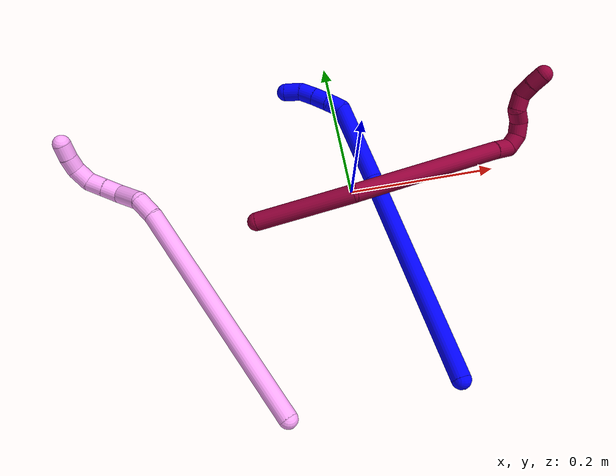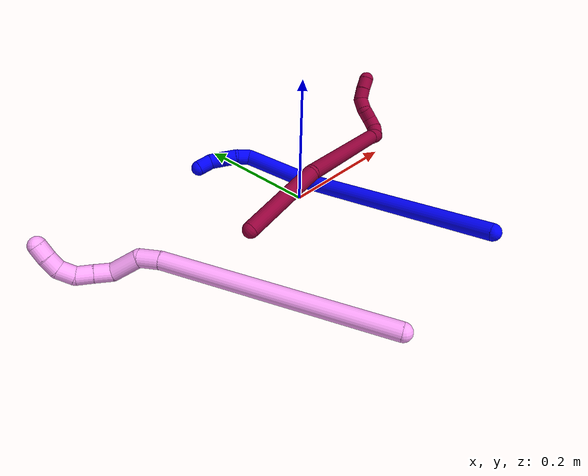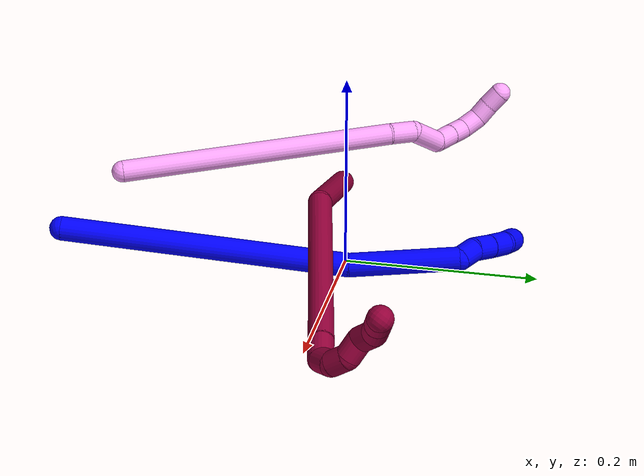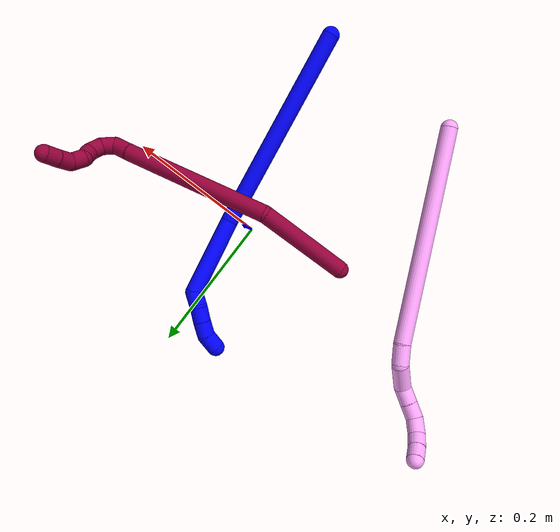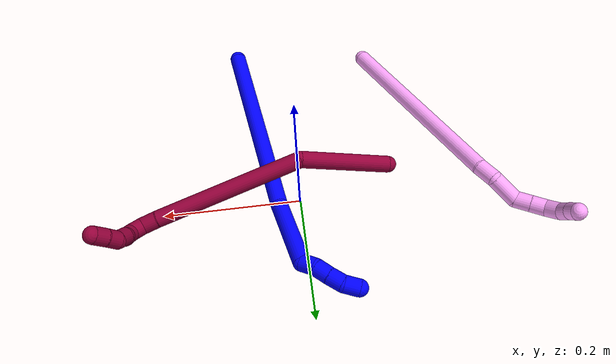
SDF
<sdf version="1.7">
 <world name="default">
  <model name="photoneo_s_sensor">
   <static>1</static>
   <pose>0 0 2 1.57079 1.57079 3.14159</pose>
   <link name="link">
    <inertial><mass>0.1</mass></inertial>
    <sensor name="sensor" type="depth">
     <update_rate>30</update_rate>
     <camera>
      <horizontal_fov>1.22</horizontal_fov>
      <image><width>1920</width><height>1200</height><format>B8G8R8</format></image>
      <clip><near>0.1</near><far>4</far></clip>
      <depth_camera><output>points</output></depth_camera>
     </camera>
     <plugin name="camera_plugin" filename="libgazebo_ros_depth_camera.so">
      <baseline>0.2</baseline>
      <alwaysOn>1</alwaysOn>
      <updateRate>0.0</updateRate>
      <cameraName>camera_ir</cameraName>
      <imageTopicName>/camera/color/image_raw</imageTopicName>
      <cameraInfoTopicName>/camera/color/camera_info</cameraInfoTopicName>
      <depthImageTopicName>/camera/depth/image_raw</depthImageTopicName>
      <depthImageCameraInfoTopicName>/camera/depth/camera_info</depthImageCameraInfoTopicName>
      <pointCloudTopicName>/camera/depth/points</pointCloudTopicName>
      <frameName>fr_optical</frameName>
      <pointCloudCutoff>0.1</pointCloudCutoff>
      <pointCloudCutoffMax>2.0</pointCloudCutoffMax>
      <distortionK1>0</distortionK1>
      <distortionK2>0</distortionK2>
      <distortionK3>0</distortionK3>
      <distortionT1>0</distortionT1>
      <distortionT2>0</distortionT2>
      <CxPrime>0</CxPrime>
      <Cx>0</Cx>
      <Cy>0</Cy>
      <focalLength>0</focalLength>
      <hackBaseline>0</hackBaseline>
     </plugin>
    </sensor>
   </link>
  </model>
  <model name="bin">
   <static>1</static>
   <link name="bottom">
    <collision name="collision-bottom">
     <pose>0 0 -0.01 0 -0 0</pose>
     <geometry><box><size>0.8 0.6 0.02</size></box></geometry>
     <surface>
      <friction><ode><mu>100</mu><mu2>100</mu2></ode></friction>
      <contact><collide_bitmask>65535</collide_bitmask></contact>
     </surface>
    </collision>
   </link>
   <link name="west_wall">
    <collision name="collision-west_wall">
     <pose>-0.41 0 0.1 0 -0 0</pose>
     <geometry><box><size>0.02 0.6 0.2</size></box></geometry>
     <surface>
      <friction><ode><mu>100</mu><mu2>100</mu2></ode></friction>
      <contact><collide_bitmask>65535</collide_bitmask></contact>
     </surface>
    </collision>
   </link>
   <link name="east_wall">
    <collision name="collision-east_wall">
     <pose>0.41 0 0.1 0 -0 0</pose>
     <geometry><box><size>0.02 0.6 0.2</size></box></geometry>
     <surface>
      <friction><ode><mu>100</mu><mu2>100</mu2></ode></friction>
      <contact><collide_bitmask>65535</collide_bitmask></contact>
     </surface>
    </collision>
   </link>
   <link name="south_wall">
    <collision name="collision-south_wall">
     <pose>0 -0.31 0.1 0 -0 0</pose>
     <geometry><box><size>0.8 0.02 0.2</size></box></geometry>
     <surface>
      <friction><ode><mu>100</mu><mu2>100</mu2></ode></friction>
      <contact><collide_bitmask>65535</collide_bitmask></contact>
     </surface>
    </collision>
   </link>
   <link name="north_wall">
    <collision name="collision-north_wall">
     <pose>0 0.31 0.1 0 -0 0</pose>
     <geometry><box><size>0.8 0.02 0.2</size></box></geometry>
     <surface>
      <friction><ode><mu>100</mu><mu2>100</mu2></ode></friction>
      <contact><collide_bitmask>65535</collide_bitmask></contact>
     </surface>
    </collision>
   </link>
  </model>
  <model name="1">
   <static>0</static>
   <link name="1">
    <collision name="collision-cylinder-e_1_1_4">
     <pose>-0.019028 0.145286 -0.026434 -1.75077 -0.128146 0.153474</pose>
     <geometry><cylinder><radius>0.0125</radius><length>0.297784</length></cylinder></geometry>
     <surface>
      <friction><ode><mu>1.16</mu><mu2>1.16</mu2><slip1>0</slip1><slip2>0</slip2></ode></friction>
      <contact><ode><kp>1e+06</kp><kd>1</kd><max_vel>0</max_vel><min_depth>0.001</min_depth></ode></contact>
     </surface>
    </collision>
    <visual name="visual-cylinder-e_1_1_4">
     <pose>-0.019028 0.145286 -0.026434 -1.75077 -0.128146 0.153474</pose>
     <geometry><cylinder><radius>0.0125</radius><length>0.297784</length></cylinder></geometry>
     <material><ambient>0 0 1 1</ambient></material>
    </visual>
    <collision name="collision-cylinder-e_2_4_5">
     <pose>-0.039605 0.347386 -0.054067 -1.59189 -0.027253 0.027833</pose>
     <geometry><cylinder><radius>0.0125</radius><length>0.113697</length></cylinder></geometry>
     <surface>
      <friction><ode><mu>1.16</mu><mu2>1.16</mu2><slip1>0</slip1><slip2>0</slip2></ode></friction>
      <contact><ode><kp>1e+06</kp><kd>1</kd><max_vel>0</max_vel><min_depth>0.001</min_depth></ode></contact>
     </surface>
    </collision>
    <visual name="visual-cylinder-e_2_4_5">
     <pose>-0.039605 0.347386 -0.054067 -1.59189 -0.027253 0.027833</pose>
     <geometry><cylinder><radius>0.0125</radius><length>0.113697</length></cylinder></geometry>
     <material><ambient>0 0 1 1</ambient></material>
    </visual>
    <collision name="collision-cylinder-e_3_5_6">
     <pose>-0.045358 0.411917 -0.048949 -0.884856 -0.39901 0.190997</pose>
     <geometry><cylinder><radius>0.0125</radius><length>0.021643</length></cylinder></geometry>
     <surface>
      <friction><ode><mu>1.16</mu><mu2>1.16</mu2><slip1>0</slip1><slip2>0</slip2></ode></friction>
      <contact><ode><kp>1e+06</kp><kd>1</kd><max_vel>0</max_vel><min_depth>0.001</min_depth></ode></contact>
     </surface>
    </collision>
    <visual name="visual-cylinder-e_3_5_6">
     <pose>-0.045358 0.411917 -0.048949 -0.884856 -0.39901 0.190997</pose>
     <geometry><cylinder><radius>0.0125</radius><length>0.021643</length></cylinder></geometry>
     <material><ambient>0 0 1 1</ambient></material>
    </visual>
    <collision name="collision-cylinder-e_4_6_7">
     <pose>-0.055784 0.427985 -0.03918 -1.17877 -0.602952 0.410007</pose>
     <geometry><cylinder><radius>0.0125</radius><length>0.021944</length></cylinder></geometry>
     <surface>
      <friction><ode><mu>1.16</mu><mu2>1.16</mu2><slip1>0</slip1><slip2>0</slip2></ode></friction>
      <contact><ode><kp>1e+06</kp><kd>1</kd><max_vel>0</max_vel><min_depth>0.001</min_depth></ode></contact>
     </surface>
    </collision>
    <visual name="visual-cylinder-e_4_6_7">
     <pose>-0.055784 0.427985 -0.03918 -1.17877 -0.602952 0.410007</pose>
     <geometry><cylinder><radius>0.0125</radius><length>0.021944</length></cylinder></geometry>
     <material><ambient>0 0 1 1</ambient></material>
    </visual>
    <collision name="collision-cylinder-e_5_7_8">
     <pose>-0.068544 0.444337 -0.031782 -1.11263 -0.632467 0.401461</pose>
     <geometry><cylinder><radius>0.0125</radius><length>0.02212</length></cylinder></geometry>
     <surface>
      <friction><ode><mu>1.16</mu><mu2>1.16</mu2><slip1>0</slip1><slip2>0</slip2></ode></friction>
      <contact><ode><kp>1e+06</kp><kd>1</kd><max_vel>0</max_vel><min_depth>0.001</min_depth></ode></contact>
     </surface>
    </collision>
    <visual name="visual-cylinder-e_5_7_8">
     <pose>-0.068544 0.444337 -0.031782 -1.11263 -0.632467 0.401461</pose>
     <geometry><cylinder><radius>0.0125</radius><length>0.02212</length></cylinder></geometry>
     <material><ambient>0 0 1 1</ambient></material>
    </visual>
    <collision name="collision-cylinder-e_6_8_2">
     <pose>-0.084038 0.457009 -0.022537 -0.722556 -0.902965 0.36242</pose>
     <geometry><cylinder><radius>0.0125</radius><length>0.022812</length></cylinder></geometry>
     <surface>
      <friction><ode><mu>1.16</mu><mu2>1.16</mu2><slip1>0</slip1><slip2>0</slip2></ode></friction>
      <contact><ode><kp>1e+06</kp><kd>1</kd><max_vel>0</max_vel><min_depth>0.001</min_depth></ode></contact>
     </surface>
    </collision>
    <visual name="visual-cylinder-e_6_8_2">
     <pose>-0.084038 0.457009 -0.022537 -0.722556 -0.902965 0.36242</pose>
     <geometry><cylinder><radius>0.0125</radius><length>0.022812</length></cylinder></geometry>
     <material><ambient>0 0 1 1</ambient></material>
    </visual>
    <collision name="collision-sphere-2">
     <pose>-0.092994 0.46168 -0.017239 0 -0 0</pose>
     <geometry><sphere><radius>0.0125</radius></sphere></geometry>
     <surface>
      <friction><ode><mu>1.16</mu><mu2>1.16</mu2><slip1>0</slip1><slip2>0</slip2></ode></friction>
      <contact><ode><kp>1e+06</kp><kd>1</kd><max_vel>0</max_vel><min_depth>0.001</min_depth></ode></contact>
     </surface>
    </collision>
    <visual name="visual-sphere-2">
     <pose>-0.092994 0.46168 -0.017239 0 -0 0</pose>
     <geometry><sphere><radius>0.0125</radius></sphere></geometry>
     <material><ambient>0 0 1 1</ambient></material>
    </visual>
    <collision name="collision-sphere-4">
     <pose>-0.038056 0.290571 -0.052868 0 -0 0</pose>
     <geometry><sphere><radius>0.0125</radius></sphere></geometry>
     <surface>
      <friction><ode><mu>1.16</mu><mu2>1.16</mu2><slip1>0</slip1><slip2>0</slip2></ode></friction>
      <contact><ode><kp>1e+06</kp><kd>1</kd><max_vel>0</max_vel><min_depth>0.001</min_depth></ode></contact>
     </surface>
    </collision>
    <visual name="visual-sphere-4">
     <pose>-0.038056 0.290571 -0.052868 0 -0 0</pose>
     <geometry><sphere><radius>0.0125</radius></sphere></geometry>
     <material><ambient>0 0 1 1</ambient></material>
    </visual>
    <collision name="collision-sphere-1">
     <geometry><sphere><radius>0.0125</radius></sphere></geometry>
     <surface>
      <friction><ode><mu>1.16</mu><mu2>1.16</mu2><slip1>0</slip1><slip2>0</slip2></ode></friction>
      <contact><ode><kp>1e+06</kp><kd>1</kd><max_vel>0</max_vel><min_depth>0.001</min_depth></ode></contact>
     </surface>
    </collision>
    <visual name="visual-sphere-1">
     <geometry><sphere><radius>0.0125</radius></sphere></geometry>
     <material><ambient>0 0 1 1</ambient></material>
    </visual>
    <collision name="collision-sphere-8">
     <pose>-0.075082 0.452338 -0.027836 0 -0 0</pose>
     <geometry><sphere><radius>0.0125</radius></sphere></geometry>
     <surface>
      <friction><ode><mu>1.16</mu><mu2>1.16</mu2><slip1>0</slip1><slip2>0</slip2></ode></friction>
      <contact><ode><kp>1e+06</kp><kd>1</kd><max_vel>0</max_vel><min_depth>0.001</min_depth></ode></contact>
     </surface>
    </collision>
    <visual name="visual-sphere-8">
     <pose>-0.075082 0.452338 -0.027836 0 -0 0</pose>
     <geometry><sphere><radius>0.0125</radius></sphere></geometry>
     <material><ambient>0 0 1 1</ambient></material>
    </visual>
    <collision name="collision-sphere-5">
     <pose>-0.041154 0.404201 -0.055265 0 -0 0</pose>
     <geometry><sphere><radius>0.0125</radius></sphere></geometry>
     <surface>
      <friction><ode><mu>1.16</mu><mu2>1.16</mu2><slip1>0</slip1><slip2>0</slip2></ode></friction>
      <contact><ode><kp>1e+06</kp><kd>1</kd><max_vel>0</max_vel><min_depth>0.001</min_depth></ode></contact>
     </surface>
    </collision>
    <visual name="visual-sphere-5">
     <pose>-0.041154 0.404201 -0.055265 0 -0 0</pose>
     <geometry><sphere><radius>0.0125</radius></sphere></geometry>
     <material><ambient>0 0 1 1</ambient></material>
    </visual>
    <collision name="collision-sphere-6">
     <pose>-0.049562 0.419633 -0.042633 0 -0 0</pose>
     <geometry><sphere><radius>0.0125</radius></sphere></geometry>
     <surface>
      <friction><ode><mu>1.16</mu><mu2>1.16</mu2><slip1>0</slip1><slip2>0</slip2></ode></friction>
      <contact><ode><kp>1e+06</kp><kd>1</kd><max_vel>0</max_vel><min_depth>0.001</min_depth></ode></contact>
     </surface>
    </collision>
    <visual name="visual-sphere-6">
     <pose>-0.049562 0.419633 -0.042633 0 -0 0</pose>
     <geometry><sphere><radius>0.0125</radius></sphere></geometry>
     <material><ambient>0 0 1 1</ambient></material>
    </visual>
    <collision name="collision-sphere-7">
     <pose>-0.062006 0.436337 -0.035727 0 -0 0</pose>
     <geometry><sphere><radius>0.0125</radius></sphere></geometry>
     <surface>
      <friction><ode><mu>1.16</mu><mu2>1.16</mu2><slip1>0</slip1><slip2>0</slip2></ode></friction>
      <contact><ode><kp>1e+06</kp><kd>1</kd><max_vel>0</max_vel><min_depth>0.001</min_depth></ode></contact>
     </surface>
    </collision>
    <visual name="visual-sphere-7">
     <pose>-0.062006 0.436337 -0.035727 0 -0 0</pose>
     <geometry><sphere><radius>0.0125</radius></sphere></geometry>
     <material><ambient>0 0 1 1</ambient></material>
    </visual>
    <inertial>
     <pose>-0.031616 0.242643 -0.03431 0 -0 0</pose>
     <mass>0.5</mass>
     <inertia><ixx>0.002634</ixx><ixy>0</ixy><ixz>0</ixz><iyy>3e-05</iyy><iyz>0</iyz><izz>-0.002001</izz></inertia>
    </inertial>
   </link>
   <pose>0.073627 -0.283161 0.042712 0.167465 -0.858705 0.066854</pose>
  </model>
  <model name="4">
   <static>0</static>
   <link name="4">
    <collision name="collision-cylinder-e_1_1_4">
     <pose>-0.07097 0.135585 -0.039382 -1.85347 -0.465775 0.611937</pose>
     <geometry><cylinder><radius>0.0125</radius><length>0.316044</length></cylinder></geometry>
     <surface>
      <friction><ode><mu>1.16</mu><mu2>1.16</mu2><slip1>0</slip1><slip2>0</slip2></ode></friction>
      <contact><ode><kp>1e+06</kp><kd>1</kd><max_vel>0</max_vel><min_depth>0.001</min_depth></ode></contact>
     </surface>
    </collision>
    <visual name="visual-cylinder-e_1_1_4">
     <pose>-0.07097 0.135585 -0.039382 -1.85347 -0.465775 0.611937</pose>
     <geometry><cylinder><radius>0.0125</radius><length>0.316044</length></cylinder></geometry>
     <material><ambient>1 0.65098 0.996078 1</ambient></material>
    </visual>
    <collision name="collision-cylinder-e_2_4_5">
     <pose>-0.147381 0.284941 -0.080519 -1.69759 -0.373494 0.422721</pose>
     <geometry><cylinder><radius>0.0125</radius><length>0.029822</length></cylinder></geometry>
     <surface>
      <friction><ode><mu>1.16</mu><mu2>1.16</mu2><slip1>0</slip1><slip2>0</slip2></ode></friction>
      <contact><ode><kp>1e+06</kp><kd>1</kd><max_vel>0</max_vel><min_depth>0.001</min_depth></ode></contact>
     </surface>
    </collision>
    <visual name="visual-cylinder-e_2_4_5">
     <pose>-0.147381 0.284941 -0.080519 -1.69759 -0.373494 0.422721</pose>
     <geometry><cylinder><radius>0.0125</radius><length>0.029822</length></cylinder></geometry>
     <material><ambient>1 0.65098 0.996078 1</ambient></material>
    </visual>
    <collision name="collision-cylinder-e_3_5_6">
     <pose>-0.158835 0.316917 -0.073005 -1.09986 -0.28628 0.176244</pose>
     <geometry><cylinder><radius>0.0125</radius><length>0.04259</length></cylinder></geometry>
     <surface>
      <friction><ode><mu>1.16</mu><mu2>1.16</mu2><slip1>0</slip1><slip2>0</slip2></ode></friction>
      <contact><ode><kp>1e+06</kp><kd>1</kd><max_vel>0</max_vel><min_depth>0.001</min_depth></ode></contact>
     </surface>
    </collision>
    <visual name="visual-cylinder-e_3_5_6">
     <pose>-0.158835 0.316917 -0.073005 -1.09986 -0.28628 0.176244</pose>
     <geometry><cylinder><radius>0.0125</radius><length>0.04259</length></cylinder></geometry>
     <material><ambient>1 0.65098 0.996078 1</ambient></material>
    </visual>
    <collision name="collision-cylinder-e_4_6_7">
     <pose>-0.163952 0.347324 -0.064423 -1.62695 0.073157 -0.077381</pose>
     <geometry><cylinder><radius>0.0125</radius><length>0.024509</length></cylinder></geometry>
     <surface>
      <friction><ode><mu>1.16</mu><mu2>1.16</mu2><slip1>0</slip1><slip2>0</slip2></ode></friction>
      <contact><ode><kp>1e+06</kp><kd>1</kd><max_vel>0</max_vel><min_depth>0.001</min_depth></ode></contact>
     </surface>
    </collision>
    <visual name="visual-cylinder-e_4_6_7">
     <pose>-0.163952 0.347324 -0.064423 -1.62695 0.073157 -0.077381</pose>
     <geometry><cylinder><radius>0.0125</radius><length>0.024509</length></cylinder></geometry>
     <material><ambient>1 0.65098 0.996078 1</ambient></material>
    </visual>
    <collision name="collision-cylinder-e_5_7_8">
     <pose>-0.162204 0.37095 -0.065593 -1.61315 0.074453 -0.077672</pose>
     <geometry><cylinder><radius>0.0125</radius><length>0.022929</length></cylinder></geometry>
     <surface>
      <friction><ode><mu>1.16</mu><mu2>1.16</mu2><slip1>0</slip1><slip2>0</slip2></ode></friction>
      <contact><ode><kp>1e+06</kp><kd>1</kd><max_vel>0</max_vel><min_depth>0.001</min_depth></ode></contact>
     </surface>
    </collision>
    <visual name="visual-cylinder-e_5_7_8">
     <pose>-0.162204 0.37095 -0.065593 -1.61315 0.074453 -0.077672</pose>
     <geometry><cylinder><radius>0.0125</radius><length>0.022929</length></cylinder></geometry>
     <material><ambient>1 0.65098 0.996078 1</ambient></material>
    </visual>
    <collision name="collision-cylinder-e_6_8_9">
     <pose>-0.161886 0.39273 -0.071832 -2.07792 -0.045131 0.076678</pose>
     <geometry><cylinder><radius>0.0125</radius><length>0.023722</length></cylinder></geometry>
     <surface>
      <friction><ode><mu>1.16</mu><mu2>1.16</mu2><slip1>0</slip1><slip2>0</slip2></ode></friction>
      <contact><ode><kp>1e+06</kp><kd>1</kd><max_vel>0</max_vel><min_depth>0.001</min_depth></ode></contact>
     </surface>
    </collision>
    <visual name="visual-cylinder-e_6_8_9">
     <pose>-0.161886 0.39273 -0.071832 -2.07792 -0.045131 0.076678</pose>
     <geometry><cylinder><radius>0.0125</radius><length>0.023722</length></cylinder></geometry>
     <material><ambient>1 0.65098 0.996078 1</ambient></material>
    </visual>
    <collision name="collision-cylinder-e_7_9_10">
     <pose>-0.162663 0.408808 -0.085973 -2.54299 -0.023806 0.077115</pose>
     <geometry><cylinder><radius>0.0125</radius><length>0.020309</length></cylinder></geometry>
     <surface>
      <friction><ode><mu>1.16</mu><mu2>1.16</mu2><slip1>0</slip1><slip2>0</slip2></ode></friction>
      <contact><ode><kp>1e+06</kp><kd>1</kd><max_vel>0</max_vel><min_depth>0.001</min_depth></ode></contact>
     </surface>
    </collision>
    <visual name="visual-cylinder-e_7_9_10">
     <pose>-0.162663 0.408808 -0.085973 -2.54299 -0.023806 0.077115</pose>
     <geometry><cylinder><radius>0.0125</radius><length>0.020309</length></cylinder></geometry>
     <material><ambient>1 0.65098 0.996078 1</ambient></material>
    </visual>
    <collision name="collision-cylinder-e_8_10_2">
     <pose>-0.164154 0.419531 -0.10297 -2.6153 -0.124788 0.455759</pose>
     <geometry><cylinder><radius>0.0125</radius><length>0.020075</length></cylinder></geometry>
     <surface>
      <friction><ode><mu>1.16</mu><mu2>1.16</mu2><slip1>0</slip1><slip2>0</slip2></ode></friction>
      <contact><ode><kp>1e+06</kp><kd>1</kd><max_vel>0</max_vel><min_depth>0.001</min_depth></ode></contact>
     </surface>
    </collision>
    <visual name="visual-cylinder-e_8_10_2">
     <pose>-0.164154 0.419531 -0.10297 -2.6153 -0.124788 0.455759</pose>
     <geometry><cylinder><radius>0.0125</radius><length>0.020075</length></cylinder></geometry>
     <material><ambient>1 0.65098 0.996078 1</ambient></material>
    </visual>
    <collision name="collision-sphere-2">
     <pose>-0.165403 0.424534 -0.111582 0 -0 0</pose>
     <geometry><sphere><radius>0.0125</radius></sphere></geometry>
     <surface>
      <friction><ode><mu>1.16</mu><mu2>1.16</mu2><slip1>0</slip1><slip2>0</slip2></ode></friction>
      <contact><ode><kp>1e+06</kp><kd>1</kd><max_vel>0</max_vel><min_depth>0.001</min_depth></ode></contact>
     </surface>
    </collision>
    <visual name="visual-sphere-2">
     <pose>-0.165403 0.424534 -0.111582 0 -0 0</pose>
     <geometry><sphere><radius>0.0125</radius></sphere></geometry>
     <material><ambient>1 0.65098 0.996078 1</ambient></material>
    </visual>
    <collision name="collision-sphere-10">
     <pose>-0.162905 0.414529 -0.094359 0 -0 0</pose>
     <geometry><sphere><radius>0.0125</radius></sphere></geometry>
     <surface>
      <friction><ode><mu>1.16</mu><mu2>1.16</mu2><slip1>0</slip1><slip2>0</slip2></ode></friction>
      <contact><ode><kp>1e+06</kp><kd>1</kd><max_vel>0</max_vel><min_depth>0.001</min_depth></ode></contact>
     </surface>
    </collision>
    <visual name="visual-sphere-10">
     <pose>-0.162905 0.414529 -0.094359 0 -0 0</pose>
     <geometry><sphere><radius>0.0125</radius></sphere></geometry>
     <material><ambient>1 0.65098 0.996078 1</ambient></material>
    </visual>
    <collision name="collision-sphere-9">
     <pose>-0.162421 0.403088 -0.077586 0 -0 0</pose>
     <geometry><sphere><radius>0.0125</radius></sphere></geometry>
     <surface>
      <friction><ode><mu>1.16</mu><mu2>1.16</mu2><slip1>0</slip1><slip2>0</slip2></ode></friction>
      <contact><ode><kp>1e+06</kp><kd>1</kd><max_vel>0</max_vel><min_depth>0.001</min_depth></ode></contact>
     </surface>
    </collision>
    <visual name="visual-sphere-9">
     <pose>-0.162421 0.403088 -0.077586 0 -0 0</pose>
     <geometry><sphere><radius>0.0125</radius></sphere></geometry>
     <material><ambient>1 0.65098 0.996078 1</ambient></material>
    </visual>
    <collision name="collision-sphere-4">
     <pose>-0.14194 0.27117 -0.078763 0 -0 0</pose>
     <geometry><sphere><radius>0.0125</radius></sphere></geometry>
     <surface>
      <friction><ode><mu>1.16</mu><mu2>1.16</mu2><slip1>0</slip1><slip2>0</slip2></ode></friction>
      <contact><ode><kp>1e+06</kp><kd>1</kd><max_vel>0</max_vel><min_depth>0.001</min_depth></ode></contact>
     </surface>
    </collision>
    <visual name="visual-sphere-4">
     <pose>-0.14194 0.27117 -0.078763 0 -0 0</pose>
     <geometry><sphere><radius>0.0125</radius></sphere></geometry>
     <material><ambient>1 0.65098 0.996078 1</ambient></material>
    </visual>
    <collision name="collision-sphere-1">
     <geometry><sphere><radius>0.0125</radius></sphere></geometry>
     <surface>
      <friction><ode><mu>1.16</mu><mu2>1.16</mu2><slip1>0</slip1><slip2>0</slip2></ode></friction>
      <contact><ode><kp>1e+06</kp><kd>1</kd><max_vel>0</max_vel><min_depth>0.001</min_depth></ode></contact>
     </surface>
    </collision>
    <visual name="visual-sphere-1">
     <geometry><sphere><radius>0.0125</radius></sphere></geometry>
     <material><ambient>1 0.65098 0.996078 1</ambient></material>
    </visual>
    <collision name="collision-sphere-8">
     <pose>-0.161351 0.382372 -0.066077 0 -0 0</pose>
     <geometry><sphere><radius>0.0125</radius></sphere></geometry>
     <surface>
      <friction><ode><mu>1.16</mu><mu2>1.16</mu2><slip1>0</slip1><slip2>0</slip2></ode></friction>
      <contact><ode><kp>1e+06</kp><kd>1</kd><max_vel>0</max_vel><min_depth>0.001</min_depth></ode></contact>
     </surface>
    </collision>
    <visual name="visual-sphere-8">
     <pose>-0.161351 0.382372 -0.066077 0 -0 0</pose>
     <geometry><sphere><radius>0.0125</radius></sphere></geometry>
     <material><ambient>1 0.65098 0.996078 1</ambient></material>
    </visual>
    <collision name="collision-sphere-5">
     <pose>-0.152821 0.298712 -0.082274 0 -0 0</pose>
     <geometry><sphere><radius>0.0125</radius></sphere></geometry>
     <surface>
      <friction><ode><mu>1.16</mu><mu2>1.16</mu2><slip1>0</slip1><slip2>0</slip2></ode></friction>
      <contact><ode><kp>1e+06</kp><kd>1</kd><max_vel>0</max_vel><min_depth>0.001</min_depth></ode></contact>
     </surface>
    </collision>
    <visual name="visual-sphere-5">
     <pose>-0.152821 0.298712 -0.082274 0 -0 0</pose>
     <geometry><sphere><radius>0.0125</radius></sphere></geometry>
     <material><ambient>1 0.65098 0.996078 1</ambient></material>
    </visual>
    <collision name="collision-sphere-6">
     <pose>-0.164848 0.335122 -0.063737 0 -0 0</pose>
     <geometry><sphere><radius>0.0125</radius></sphere></geometry>
     <surface>
      <friction><ode><mu>1.16</mu><mu2>1.16</mu2><slip1>0</slip1><slip2>0</slip2></ode></friction>
      <contact><ode><kp>1e+06</kp><kd>1</kd><max_vel>0</max_vel><min_depth>0.001</min_depth></ode></contact>
     </surface>
    </collision>
    <visual name="visual-sphere-6">
     <pose>-0.164848 0.335122 -0.063737 0 -0 0</pose>
     <geometry><sphere><radius>0.0125</radius></sphere></geometry>
     <material><ambient>1 0.65098 0.996078 1</ambient></material>
    </visual>
    <collision name="collision-sphere-7">
     <pose>-0.163057 0.359527 -0.065109 0 -0 0</pose>
     <geometry><sphere><radius>0.0125</radius></sphere></geometry>
     <surface>
      <friction><ode><mu>1.16</mu><mu2>1.16</mu2><slip1>0</slip1><slip2>0</slip2></ode></friction>
      <contact><ode><kp>1e+06</kp><kd>1</kd><max_vel>0</max_vel><min_depth>0.001</min_depth></ode></contact>
     </surface>
    </collision>
    <visual name="visual-sphere-7">
     <pose>-0.163057 0.359527 -0.065109 0 -0 0</pose>
     <geometry><sphere><radius>0.0125</radius></sphere></geometry>
     <material><ambient>1 0.65098 0.996078 1</ambient></material>
    </visual>
    <inertial>
     <pose>-0.103533 0.21581 -0.053114 0 -0 0</pose>
     <mass>0.5</mass>
     <inertia>
      <ixx>0.003299</ixx>
      <ixy>0</ixy>
      <ixz>0</ixz>
      <iyy>0.001445</iyy>
      <iyz>0</iyz>
      <izz>-0.001103</izz>
     </inertia>
    </inertial>
   </link>
   <pose>-0.139059 -0.28797 0.015218 -3.13372 -0.373952 -2.18499</pose>
  </model>
  <model name="8">
   <static>0</static>
   <link name="8">
    <collision name="collision-cylinder-e_1_1_4">
     <pose>0.04172 0.049286 0.018938 -1.20394 0.668711 -0.468582</pose>
     <geometry><cylinder><radius>0.0125</radius><length>0.134586</length></cylinder></geometry>
     <surface>
      <friction><ode><mu>1.16</mu><mu2>1.16</mu2><slip1>0</slip1><slip2>0</slip2></ode></friction>
      <contact><ode><kp>1e+06</kp><kd>1</kd><max_vel>0</max_vel><min_depth>0.001</min_depth></ode></contact>
     </surface>
    </collision>
    <visual name="visual-cylinder-e_1_1_4">
     <pose>0.04172 0.049286 0.018938 -1.20394 0.668711 -0.468582</pose>
     <geometry><cylinder><radius>0.0125</radius><length>0.134586</length></cylinder></geometry>
     <material><ambient>0.584314 0 0.227451 1</ambient></material>
    </visual>
    <collision name="collision-cylinder-e_2_4_5">
     <pose>0.172118 0.135626 0.092257 -0.59812 0.932401 -0.307823</pose>
     <geometry><cylinder><radius>0.0125</radius><length>0.220852</length></cylinder></geometry>
     <surface>
      <friction><ode><mu>1.16</mu><mu2>1.16</mu2><slip1>0</slip1><slip2>0</slip2></ode></friction>
      <contact><ode><kp>1e+06</kp><kd>1</kd><max_vel>0</max_vel><min_depth>0.001</min_depth></ode></contact>
     </surface>
    </collision>
    <visual name="visual-cylinder-e_2_4_5">
     <pose>0.172118 0.135626 0.092257 -0.59812 0.932401 -0.307823</pose>
     <geometry><cylinder><radius>0.0125</radius><length>0.220852</length></cylinder></geometry>
     <material><ambient>0.584314 0 0.227451 1</ambient></material>
    </visual>
    <collision name="collision-cylinder-e_3_5_6">
     <pose>0.270189 0.175964 0.15353 -0.444672 0.888195 -0.214306</pose>
     <geometry><cylinder><radius>0.0125</radius><length>0.02421</length></cylinder></geometry>
     <surface>
      <friction><ode><mu>1.16</mu><mu2>1.16</mu2><slip1>0</slip1><slip2>0</slip2></ode></friction>
      <contact><ode><kp>1e+06</kp><kd>1</kd><max_vel>0</max_vel><min_depth>0.001</min_depth></ode></contact>
     </surface>
    </collision>
    <visual name="visual-cylinder-e_3_5_6">
     <pose>0.270189 0.175964 0.15353 -0.444672 0.888195 -0.214306</pose>
     <geometry><cylinder><radius>0.0125</radius><length>0.02421</length></cylinder></geometry>
     <material><ambient>0.584314 0 0.227451 1</ambient></material>
    </visual>
    <collision name="collision-cylinder-e_4_6_7">
     <pose>0.288978 0.182419 0.158703 -2.06811 1.20432 -1.71452</pose>
     <geometry><cylinder><radius>0.0125</radius><length>0.02013</length></cylinder></geometry>
     <surface>
      <friction><ode><mu>1.16</mu><mu2>1.16</mu2><slip1>0</slip1><slip2>0</slip2></ode></friction>
      <contact><ode><kp>1e+06</kp><kd>1</kd><max_vel>0</max_vel><min_depth>0.001</min_depth></ode></contact>
     </surface>
    </collision>
    <visual name="visual-cylinder-e_4_6_7">
     <pose>0.288978 0.182419 0.158703 -2.06811 1.20432 -1.71452</pose>
     <geometry><cylinder><radius>0.0125</radius><length>0.02013</length></cylinder></geometry>
     <material><ambient>0.584314 0 0.227451 1</ambient></material>
    </visual>
    <collision name="collision-cylinder-e_5_7_8">
     <pose>0.305256 0.187635 0.149911 -2.85991 0.75167 -2.4517</pose>
     <geometry><cylinder><radius>0.0125</radius><length>0.020153</length></cylinder></geometry>
     <surface>
      <friction><ode><mu>1.16</mu><mu2>1.16</mu2><slip1>0</slip1><slip2>0</slip2></ode></friction>
      <contact><ode><kp>1e+06</kp><kd>1</kd><max_vel>0</max_vel><min_depth>0.001</min_depth></ode></contact>
     </surface>
    </collision>
    <visual name="visual-cylinder-e_5_7_8">
     <pose>0.305256 0.187635 0.149911 -2.85991 0.75167 -2.4517</pose>
     <geometry><cylinder><radius>0.0125</radius><length>0.020153</length></cylinder></geometry>
     <material><ambient>0.584314 0 0.227451 1</ambient></material>
    </visual>
    <collision name="collision-cylinder-e_6_8_9">
     <pose>0.313733 0.192134 0.133252 -2.89109 0.159877 -1.13326</pose>
     <geometry><cylinder><radius>0.0125</radius><length>0.020048</length></cylinder></geometry>
     <surface>
      <friction><ode><mu>1.16</mu><mu2>1.16</mu2><slip1>0</slip1><slip2>0</slip2></ode></friction>
      <contact><ode><kp>1e+06</kp><kd>1</kd><max_vel>0</max_vel><min_depth>0.001</min_depth></ode></contact>
     </surface>
    </collision>
    <visual name="visual-cylinder-e_6_8_9">
     <pose>0.313733 0.192134 0.133252 -2.89109 0.159877 -1.13326</pose>
     <geometry><cylinder><radius>0.0125</radius><length>0.020048</length></cylinder></geometry>
     <material><ambient>0.584314 0 0.227451 1</ambient></material>
    </visual>
    <collision name="collision-cylinder-e_7_9_10">
     <pose>0.322461 0.197882 0.117477 -2.65233 0.794031 -2.06756</pose>
     <geometry><cylinder><radius>0.0125</radius><length>0.020002</length></cylinder></geometry>
     <surface>
      <friction><ode><mu>1.16</mu><mu2>1.16</mu2><slip1>0</slip1><slip2>0</slip2></ode></friction>
      <contact><ode><kp>1e+06</kp><kd>1</kd><max_vel>0</max_vel><min_depth>0.001</min_depth></ode></contact>
     </surface>
    </collision>
    <visual name="visual-cylinder-e_7_9_10">
     <pose>0.322461 0.197882 0.117477 -2.65233 0.794031 -2.06756</pose>
     <geometry><cylinder><radius>0.0125</radius><length>0.020002</length></cylinder></geometry>
     <material><ambient>0.584314 0 0.227451 1</ambient></material>
    </visual>
    <collision name="collision-cylinder-e_8_10_11">
     <pose>0.334616 0.208907 0.107414 -2.0355 0.526228 -0.822881</pose>
     <geometry><cylinder><radius>0.0125</radius><length>0.02</length></cylinder></geometry>
     <surface>
      <friction><ode><mu>1.16</mu><mu2>1.16</mu2><slip1>0</slip1><slip2>0</slip2></ode></friction>
      <contact><ode><kp>1e+06</kp><kd>1</kd><max_vel>0</max_vel><min_depth>0.001</min_depth></ode></contact>
     </surface>
    </collision>
    <visual name="visual-cylinder-e_8_10_11">
     <pose>0.334616 0.208907 0.107414 -2.0355 0.526228 -0.822881</pose>
     <geometry><cylinder><radius>0.0125</radius><length>0.02</length></cylinder></geometry>
     <material><ambient>0.584314 0 0.227451 1</ambient></material>
    </visual>
    <collision name="collision-cylinder-e_9_11_2">
     <pose>0.34503 0.224575 0.10069 -1.91532 0.568792 -0.78753</pose>
     <geometry><cylinder><radius>0.0125</radius><length>0.020017</length></cylinder></geometry>
     <surface>
      <friction><ode><mu>1.16</mu><mu2>1.16</mu2><slip1>0</slip1><slip2>0</slip2></ode></friction>
      <contact><ode><kp>1e+06</kp><kd>1</kd><max_vel>0</max_vel><min_depth>0.001</min_depth></ode></contact>
     </surface>
    </collision>
    <visual name="visual-cylinder-e_9_11_2">
     <pose>0.34503 0.224575 0.10069 -1.91532 0.568792 -0.78753</pose>
     <geometry><cylinder><radius>0.0125</radius><length>0.020017</length></cylinder></geometry>
     <material><ambient>0.584314 0 0.227451 1</ambient></material>
    </visual>
    <collision name="collision-sphere-2">
     <pose>0.350421 0.232512 0.097842 0 -0 0</pose>
     <geometry><sphere><radius>0.0125</radius></sphere></geometry>
     <surface>
      <friction><ode><mu>1.16</mu><mu2>1.16</mu2><slip1>0</slip1><slip2>0</slip2></ode></friction>
      <contact><ode><kp>1e+06</kp><kd>1</kd><max_vel>0</max_vel><min_depth>0.001</min_depth></ode></contact>
     </surface>
    </collision>
    <visual name="visual-sphere-2">
     <pose>0.350421 0.232512 0.097842 0 -0 0</pose>
     <geometry><sphere><radius>0.0125</radius></sphere></geometry>
     <material><ambient>0.584314 0 0.227451 1</ambient></material>
    </visual>
    <collision name="collision-sphere-11">
     <pose>0.339639 0.216637 0.103538 0 -0 0</pose>
     <geometry><sphere><radius>0.0125</radius></sphere></geometry>
     <surface>
      <friction><ode><mu>1.16</mu><mu2>1.16</mu2><slip1>0</slip1><slip2>0</slip2></ode></friction>
      <contact><ode><kp>1e+06</kp><kd>1</kd><max_vel>0</max_vel><min_depth>0.001</min_depth></ode></contact>
     </surface>
    </collision>
    <visual name="visual-sphere-11">
     <pose>0.339639 0.216637 0.103538 0 -0 0</pose>
     <geometry><sphere><radius>0.0125</radius></sphere></geometry>
     <material><ambient>0.584314 0 0.227451 1</ambient></material>
    </visual>
    <collision name="collision-sphere-10">
     <pose>0.329594 0.201177 0.111289 0 -0 0</pose>
     <geometry><sphere><radius>0.0125</radius></sphere></geometry>
     <surface>
      <friction><ode><mu>1.16</mu><mu2>1.16</mu2><slip1>0</slip1><slip2>0</slip2></ode></friction>
      <contact><ode><kp>1e+06</kp><kd>1</kd><max_vel>0</max_vel><min_depth>0.001</min_depth></ode></contact>
     </surface>
    </collision>
    <visual name="visual-sphere-10">
     <pose>0.329594 0.201177 0.111289 0 -0 0</pose>
     <geometry><sphere><radius>0.0125</radius></sphere></geometry>
     <material><ambient>0.584314 0 0.227451 1</ambient></material>
    </visual>
    <collision name="collision-sphere-9">
     <pose>0.315328 0.194587 0.123665 0 -0 0</pose>
     <geometry><sphere><radius>0.0125</radius></sphere></geometry>
     <surface>
      <friction><ode><mu>1.16</mu><mu2>1.16</mu2><slip1>0</slip1><slip2>0</slip2></ode></friction>
      <contact><ode><kp>1e+06</kp><kd>1</kd><max_vel>0</max_vel><min_depth>0.001</min_depth></ode></contact>
     </surface>
    </collision>
    <visual name="visual-sphere-9">
     <pose>0.315328 0.194587 0.123665 0 -0 0</pose>
     <geometry><sphere><radius>0.0125</radius></sphere></geometry>
     <material><ambient>0.584314 0 0.227451 1</ambient></material>
    </visual>
    <collision name="collision-sphere-4">
     <pose>0.08344 0.098573 0.037877 0 -0 0</pose>
     <geometry><sphere><radius>0.0125</radius></sphere></geometry>
     <surface>
      <friction><ode><mu>1.16</mu><mu2>1.16</mu2><slip1>0</slip1><slip2>0</slip2></ode></friction>
      <contact><ode><kp>1e+06</kp><kd>1</kd><max_vel>0</max_vel><min_depth>0.001</min_depth></ode></contact>
     </surface>
    </collision>
    <visual name="visual-sphere-4">
     <pose>0.08344 0.098573 0.037877 0 -0 0</pose>
     <geometry><sphere><radius>0.0125</radius></sphere></geometry>
     <material><ambient>0.584314 0 0.227451 1</ambient></material>
    </visual>
    <collision name="collision-sphere-1">
     <geometry><sphere><radius>0.0125</radius></sphere></geometry>
     <surface>
      <friction><ode><mu>1.16</mu><mu2>1.16</mu2><slip1>0</slip1><slip2>0</slip2></ode></friction>
      <contact><ode><kp>1e+06</kp><kd>1</kd><max_vel>0</max_vel><min_depth>0.001</min_depth></ode></contact>
     </surface>
    </collision>
    <visual name="visual-sphere-1">
     <geometry><sphere><radius>0.0125</radius></sphere></geometry>
     <material><ambient>0.584314 0 0.227451 1</ambient></material>
    </visual>
    <collision name="collision-sphere-8">
     <pose>0.312137 0.189681 0.14284 0 -0 0</pose>
     <geometry><sphere><radius>0.0125</radius></sphere></geometry>
     <surface>
      <friction><ode><mu>1.16</mu><mu2>1.16</mu2><slip1>0</slip1><slip2>0</slip2></ode></friction>
      <contact><ode><kp>1e+06</kp><kd>1</kd><max_vel>0</max_vel><min_depth>0.001</min_depth></ode></contact>
     </surface>
    </collision>
    <visual name="visual-sphere-8">
     <pose>0.312137 0.189681 0.14284 0 -0 0</pose>
     <geometry><sphere><radius>0.0125</radius></sphere></geometry>
     <material><ambient>0.584314 0 0.227451 1</ambient></material>
    </visual>
    <collision name="collision-sphere-5">
     <pose>0.260796 0.172679 0.146637 0 -0 0</pose>
     <geometry><sphere><radius>0.0125</radius></sphere></geometry>
     <surface>
      <friction><ode><mu>1.16</mu><mu2>1.16</mu2><slip1>0</slip1><slip2>0</slip2></ode></friction>
      <contact><ode><kp>1e+06</kp><kd>1</kd><max_vel>0</max_vel><min_depth>0.001</min_depth></ode></contact>
     </surface>
    </collision>
    <visual name="visual-sphere-5">
     <pose>0.260796 0.172679 0.146637 0 -0 0</pose>
     <geometry><sphere><radius>0.0125</radius></sphere></geometry>
     <material><ambient>0.584314 0 0.227451 1</ambient></material>
    </visual>
    <collision name="collision-sphere-6">
     <pose>0.279582 0.179249 0.160424 0 -0 0</pose>
     <geometry><sphere><radius>0.0125</radius></sphere></geometry>
     <surface>
      <friction><ode><mu>1.16</mu><mu2>1.16</mu2><slip1>0</slip1><slip2>0</slip2></ode></friction>
      <contact><ode><kp>1e+06</kp><kd>1</kd><max_vel>0</max_vel><min_depth>0.001</min_depth></ode></contact>
     </surface>
    </collision>
    <visual name="visual-sphere-6">
     <pose>0.279582 0.179249 0.160424 0 -0 0</pose>
     <geometry><sphere><radius>0.0125</radius></sphere></geometry>
     <material><ambient>0.584314 0 0.227451 1</ambient></material>
    </visual>
    <collision name="collision-sphere-7">
     <pose>0.298375 0.185588 0.156983 0 -0 0</pose>
     <geometry><sphere><radius>0.0125</radius></sphere></geometry>
     <surface>
      <friction><ode><mu>1.16</mu><mu2>1.16</mu2><slip1>0</slip1><slip2>0</slip2></ode></friction>
      <contact><ode><kp>1e+06</kp><kd>1</kd><max_vel>0</max_vel><min_depth>0.001</min_depth></ode></contact>
     </surface>
    </collision>
    <visual name="visual-sphere-7">
     <pose>0.298375 0.185588 0.156983 0 -0 0</pose>
     <geometry><sphere><radius>0.0125</radius></sphere></geometry>
     <material><ambient>0.584314 0 0.227451 1</ambient></material>
    </visual>
    <inertial>
     <pose>0.176953 0.129568 0.084084 0 -0 0</pose>
     <mass>0.5</mass>
     <inertia>
      <ixx>0.000447</ixx>
      <ixy>0</ixy>
      <ixz>0</ixz>
      <iyy>0.00074</iyy>
      <iyz>0</iyz>
      <izz>-0.001317</izz>
     </inertia>
    </inertial>
   </link>
   <pose>-0.136051 -0.030637 0.027774 2.36256 0.097126 0.855401</pose>
  </model>
 </world>
</sdf>
